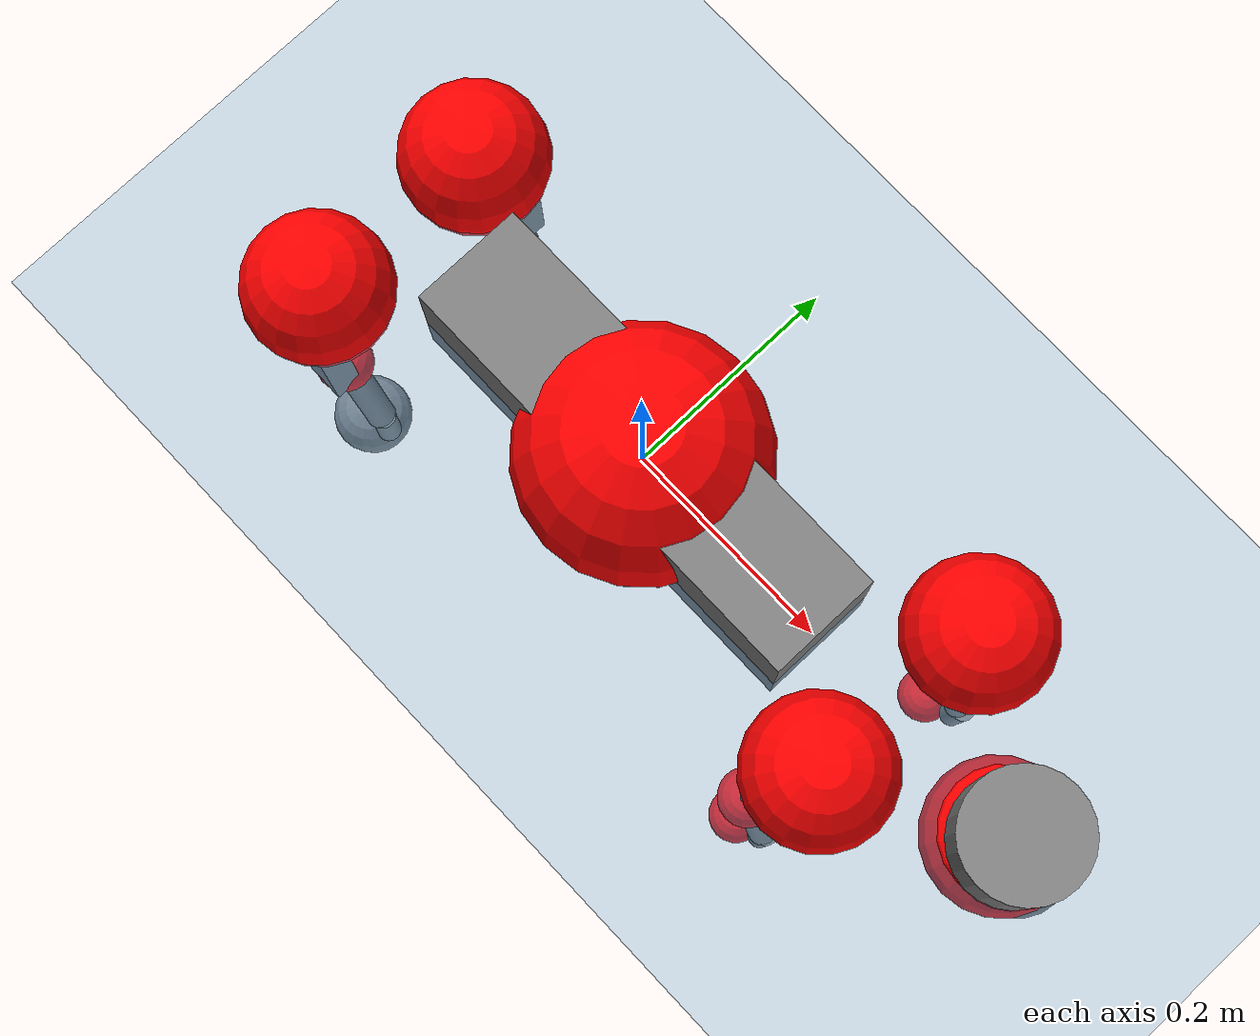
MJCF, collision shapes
<mujoco model="go2">
  <compiler angle="radian" assetdir="assets" balanceinertia="true" inertiafromgeom="false"/>

  <option timestep="0.005" density="1.2" viscosity="2e-05"/>

  <size nkey="1"/>

  <visual>
    <quality shadowsize="8192"/>
    <map shadowclip="0.5"/>
  </visual>

  <default>
    <default class="/">
      <geom contype="0" conaffinity="0" group="1" solref="-1000 -80"/>
      <site size="0.01 0.005 0.005" group="5"/>
      <general forcelimited="true" biastype="affine" gainprm="20" biasprm="0 -20 -0.5"/>
      <default class="go2">
        <joint armature="0.01" damping="0.01" frictionloss="0.2"/>
        <geom condim="1" margin="0.001"/>
        <default class="visual">
          <geom type="mesh" group="2"/>
        </default>
        <default class="collision">
          <geom group="3"/>
          <default class="foot">
            <geom size="0.022 0 0" condim="6" priority="1" friction="0.8 0.02 0.01" solimp="0.015 1 0.022"/>
          </default>
        </default>
        <default class="reward_collision_sphere">
          <geom group="5" rgba="1 0 0 1"/>
        </default>
      </default>
    </default>
  </default>

  <asset>
    <texture type="skybox" colorspace="auto" name="//unnamed_texture_0" builtin="gradient" rgb1="0.95 0.95 0.95" rgb2="0.95 0.95 0.95" width="100" height="600"/>
    <texture type="2d" colorspace="auto" name="texplane" builtin="checker" rgb1="0.345 0.575 0.748" rgb2="0.345 0.575 0.748" markrgb="1 1 1" width="512" height="512"/>
    <material name="MatPlane" class="/" texture="texplane" texuniform="true" texrepeat="2 2" specular="0.9"/>
    <material name="metal" class="/" rgba="0.9 0.95 0.95 1"/>
    <material name="black" class="/" rgba="0 0 0 1"/>
    <material name="white" class="/"/>
    <material name="gray" class="/" rgba="0.671705 0.692426 0.77427 1"/>
    <mesh name="base_0" class="/" file="base_0.obj"/>
    <mesh name="base_1" class="/" file="base_1.obj"/>
    <mesh name="base_2" class="/" file="base_2.obj"/>
    <mesh name="base_3" class="/" file="base_3.obj"/>
    <mesh name="base_4" class="/" file="base_4.obj"/>
    <mesh name="hip_0" class="/" file="hip_0.obj"/>
    <mesh name="hip_1" class="/" file="hip_1.obj"/>
    <mesh name="thigh_0" class="/" file="thigh_0.obj"/>
    <mesh name="thigh_1" class="/" file="thigh_1.obj"/>
    <mesh name="thigh_mirror_0" class="/" file="thigh_mirror_0.obj"/>
    <mesh name="thigh_mirror_1" class="/" file="thigh_mirror_1.obj"/>
    <mesh name="calf_0" class="/" file="calf_0.obj"/>
    <mesh name="calf_1" class="/" file="calf_1.obj"/>
    <mesh name="calf_mirror_0" class="/" file="calf_mirror_0.obj"/>
    <mesh name="calf_mirror_1" class="/" file="calf_mirror_1.obj"/>
    <mesh name="foot" class="/" file="foot.obj"/>
  </asset>

  <worldbody>
    <geom name="floor" class="/" size="100 100 0.125" type="plane" group="0" material="MatPlane"/>
    <light name="toplight_shadow" class="/" pos="0 0 5" dir="0.0990148 0.0990148 -0.990148" type="directional" ambient="0.04 0.04 0.04" diffuse="0.55 0.55 0.55" specular="0.12 0.12 0.12"/>
    <light name="toplight_fill" class="/" pos="0 0 5" dir="0.0990148 0.0990148 -0.990148" type="directional" castshadow="false" ambient="0.04 0.04 0.04" diffuse="0.3 0.3 0.3" specular="0.08 0.08 0.08"/>
    <body name="trunk" childclass="go2" pos="-0.000245169 0.000598042 0.0119663" quat="0.999999 -0.000873963 5.41397e-05 -0.000509005">
      <inertial pos="0.0290062 -0.0158159 -0.0187967" quat="-0.00289381 0.712228 -0.00336294 0.701934" mass="9.89186" diaginertia="0.773245 0.0229936 0.042299"/>
      <joint name="//unnamed_joint_0" type="free" armature="0" damping="0" frictionloss="0"/>
      <geom name="//unnamed_geom_1" class="visual" material="black" mesh="base_0"/>
      <geom name="//unnamed_geom_2" class="visual" material="black" mesh="base_1"/>
      <geom name="//unnamed_geom_3" class="visual" material="black" mesh="base_2"/>
      <geom name="//unnamed_geom_4" class="visual" material="white" mesh="base_3"/>
      <geom name="//unnamed_geom_5" class="visual" material="gray" mesh="base_4"/>
      <geom name="trunk_1" class="collision" size="0.209204 0.0519952 0.0633952" type="box"/>
      <geom name="trunk_2" class="collision" size="0.0556098 0.0500488" pos="0.431024 0 0.0108599" type="cylinder"/>
      <geom name="trunk_3" class="collision" size="0.0522732" pos="0.443123 0 -0.0651591"/>
      <geom name="//unnamed_geom_9" class="reward_collision_sphere" size="0.11122"/>
      <geom name="//unnamed_geom_10" class="reward_collision_sphere" size="0.0667318" pos="0.423462 0 -0.0488694"/>
      <site name="imu" pos="-0.0756337 0.0496942 0.00711835" size="0.011122"/>
      <camera name="track" pos="0 -1.47648 0" quat="0.707107 0.707107 0 0" mode="trackcom"/>
      <camera name="ego_camera" pos="0.471858 0 0.0488694" quat="-0.5 -0.5 0.5 0.5"/>
      <body name="FL_hip" pos="0.294842 0.0451964 -0.00324253" quat="0.999995 0.00185113 0.00231093 0.00092205">
        <inertial pos="0.00601921 0.00354347 0.00952609" quat="0.4914 0.504261 0.519894 0.483691" mass="1.08882" diaginertia="0.0076403 0.000158743 0.000685122"/>
        <joint name="FL_hip_joint" pos="0 0 0" axis="0.999967 -0.00817291 -0.000339548" range="-0.876688 1.04337" armature="0.00469387" damping="0" frictionloss="0.37467"/>
        <geom name="//unnamed_geom_11" class="visual" material="metal" mesh="hip_0"/>
        <geom name="//unnamed_geom_12" class="visual" material="gray" mesh="hip_1"/>
        <geom name="//unnamed_geom_13" class="collision" size="0.051161 0.0222439" pos="0 0.0590592 0" quat="0.707107 0.707107 0 0" type="cylinder"/>
        <geom name="//unnamed_geom_14" class="reward_collision_sphere" size="0.0667318" pos="0 0.0516768 0"/>
        <body name="FL_thigh" pos="0.000143971 0.0744905 -0.00854988" quat="1 -2.01831e-05 -3.15106e-05 7.37546e-06">
          <inertial pos="-0.0034183 -0.0155553 -0.0257099" quat="0.829697 0.0929798 -0.0280194 0.549702" mass="1.73298" diaginertia="0.0448796 0.00126986 0.001894"/>
          <joint name="FL_thigh_joint" pos="0 0 0" axis="0.0246643 0.999033 -0.0363953" stiffness="0.0326979" range="-1.34707 3.32083" armature="0.00713196" damping="0.00712562" frictionloss="0.183362"/>
          <geom name="//unnamed_geom_15" class="visual" material="metal" mesh="thigh_0"/>
          <geom name="//unnamed_geom_16" class="visual" material="gray" mesh="thigh_1"/>
          <geom name="//unnamed_geom_17" class="collision" size="0.118449 0.0136244 0.0189073" pos="0 0 -0.115657" quat="0.707107 0 0.707107 0" type="box"/>
          <body name="FL_calf" pos="0.00855305 -0.0117816 -0.24399" quat="0.999971 0.0012988 -0.000866854 0.00747381">
            <inertial pos="0.0124585 -0.000499464 -0.15326" quat="0.710605 0.00191177 -0.00330555 0.703581" mass="0.420192" diaginertia="0.0114589 0.000329217 8.93311e-05"/>
            <joint name="FL_calf_joint" pos="0 0 0" axis="-0.009099 0.999524 0.0294716" range="-2.80301 -0.739729" armature="0.0163433" damping="0" frictionloss="0.355863"/>
            <geom name="//unnamed_geom_18" class="visual" material="gray" mesh="calf_0"/>
            <geom name="//unnamed_geom_19" class="visual" material="black" mesh="calf_1"/>
            <geom name="FL_calf0" class="collision" size="0.0133464 0.0667318" pos="0.0120989 0 -0.0651591" quat="0.994493 0 -0.104807 0" type="cylinder"/>
            <geom name="//unnamed_geom_21" class="collision" size="0.0122342 0.0361464" pos="0.0302473 0 -0.160726" quat="0.999688 0 0.0249974 0" type="cylinder"/>
            <geom name="//unnamed_geom_22" class="visual" pos="0 0 -0.231315" quat="1 0 0 0" material="black" mesh="foot"/>
            <geom name="FL_foot" class="foot" size="0.0122685" pos="-0.00302473 0 -0.231315"/>
            <geom name="//unnamed_geom_24" class="reward_collision_sphere" size="0.0278049"/>
            <geom name="//unnamed_geom_25" class="reward_collision_sphere" size="0.0278049" pos="-0.00302473 0 -0.231315"/>
            <site name="FL_foot" class="foot" pos="-0.00302473 0 -0.231315" size="0.011122"/>
          </body>
        </body>
      </body>
      <body name="FR_hip" pos="0.285272 -0.0239322 0.000975068" quat="0.999977 -0.005348 -0.00273553 0.00300667">
        <inertial pos="-0.00730172 -0.00577945 0.00460014" quat="0.495794 0.507918 0.500546 0.495642" mass="1.01044" diaginertia="0.00858766 0.00017272 0.000699069"/>
        <joint name="FR_hip_joint" pos="0 0 0" axis="0.999979 -0.00612396 0.00192504" range="-1.30446 1.35057" armature="0.0121018" damping="0" frictionloss="0.345147"/>
        <geom name="//unnamed_geom_26" class="visual" pos="0 -3.02941e-09 -1.29938e-07" quat="4.63268e-05 1 0 0" material="metal" mesh="hip_0"/>
        <geom name="//unnamed_geom_27" class="visual" pos="0 -4.91104e-09 3.21386e-07" quat="4.63268e-05 1 0 0" material="gray" mesh="hip_1"/>
        <geom name="//unnamed_geom_28" class="collision" size="0.051161 0.0222439" pos="0 -0.0590592 0" quat="0.707107 0.707107 0 0" type="cylinder"/>
        <geom name="//unnamed_geom_29" class="reward_collision_sphere" size="0.0667318" pos="0 -0.0516768 0"/>
        <body name="FR_thigh" pos="-0.0166009 -0.0805936 0.00103351" quat="0.999995 0.000324048 -0.000597222 0.00324062">
          <inertial pos="-0.00739088 0.0206507 -0.0347633" quat="0.554155 -0.0209963 0.0848591 0.82781" mass="1.39466" diaginertia="0.0441811 0.00111717 0.00097876"/>
          <joint name="FR_thigh_joint" pos="0 0 0" axis="0.0165736 -0.996985 0.0758017" stiffness="0.00296725" range="-3.83323 1.87511" armature="0.0101905" damping="0.0669968" frictionloss="0.286397"/>
          <geom name="//unnamed_geom_30" class="visual" material="metal" mesh="thigh_mirror_0"/>
          <geom name="//unnamed_geom_31" class="visual" material="gray" mesh="thigh_mirror_1"/>
          <geom name="//unnamed_geom_32" class="collision" size="0.118449 0.0136244 0.0189073" pos="0 0 -0.115657" quat="0.707107 0 0.707107 0" type="box"/>
          <body name="FR_calf" pos="-0.0155688 -0.00535835 -0.240856" quat="0.999997 0.000646518 -0.00212116 -0.0012377">
            <inertial pos="0.0174634 0.00618657 -0.170001" quat="0.719855 -0.0138257 0.0227865 0.693613" mass="0.401932" diaginertia="0.0101817 0.000326104 8.15136e-05"/>
            <joint name="FR_calf_joint" pos="0 0 0" axis="-0.0772831 -0.996273 -0.0383053" stiffness="0.0373892" range="0.708575 2.99579" armature="0.0116722" damping="0" frictionloss="0.413218"/>
            <geom name="//unnamed_geom_33" class="visual" material="gray" mesh="calf_mirror_0"/>
            <geom name="//unnamed_geom_34" class="visual" material="black" mesh="calf_mirror_1"/>
            <geom name="FR_calf0" class="collision" size="0.0144586 0.0667318" pos="0.0151236 0 -0.0651591" quat="0.995004 0 -0.0998334 0" type="cylinder"/>
            <geom name="//unnamed_geom_36" class="collision" size="0.0122342 0.0361464" pos="0.0302473 0 -0.160726" quat="0.999688 0 0.0249974 0" type="cylinder"/>
            <geom name="//unnamed_geom_37" class="visual" pos="0 0 -0.231315" quat="1 0 0 0" material="black" mesh="foot"/>
            <geom name="FR_foot" class="foot" size="0.0194419" pos="-0.00302473 0 -0.231315"/>
            <geom name="//unnamed_geom_39" class="reward_collision_sphere" size="0.0278049"/>
            <geom name="//unnamed_geom_40" class="reward_collision_sphere" size="0.0278049" pos="-0.00302473 0 -0.231315"/>
            <site name="FR_foot" class="foot" pos="-0.00302473 0 -0.231315" size="0.011122"/>
          </body>
        </body>
      </body>
      <body name="RL_hip" pos="-0.286907 0.0221281 -0.00343609" quat="0.999998 0.000425676 -0.00081932 0.00167052">
        <inertial pos="0.0174562 0.0153018 -0.00488272" quat="0.458467 0.534688 0.545381 0.454395" mass="1.1438" diaginertia="0.00639787 0.000113095 0.000808833"/>
        <joint name="RL_hip_joint" pos="0 0 0" axis="-0.998186 0.0513128 -0.0314962" stiffness="0.0627374" range="-1.16191 1.2323" armature="0.0111068" damping="0.0659273" frictionloss="0.116374"/>
        <geom name="//unnamed_geom_41" class="visual" pos="-3.71443e-09 0 -7.28114e-07" quat="4.63268e-05 0 1 0" material="metal" mesh="hip_0"/>
        <geom name="//unnamed_geom_42" class="visual" pos="-6.02154e-09 0 -6.45734e-07" quat="4.63268e-05 0 1 0" material="gray" mesh="hip_1"/>
        <geom name="//unnamed_geom_43" class="collision" size="0.051161 0.0222439" pos="0 0.0590592 0" quat="0.707107 0.707107 0 0" type="cylinder"/>
        <geom name="//unnamed_geom_44" class="reward_collision_sphere" size="0.0667318" pos="0 0.0516768 0"/>
        <body name="RL_thigh" pos="-6.57645e-05 0.0845616 -0.005826" quat="0.999988 0.00318454 -5.82426e-05 0.00366609">
          <inertial pos="0.00166638 -0.00464884 -0.0346032" quat="0.811076 0.0651982 -0.020658 0.580929" mass="1.49292" diaginertia="0.0403496 0.00116386 0.000948401"/>
          <joint name="RL_thigh_joint" pos="0 0 0" axis="0.0163173 0.999818 0.00990363" range="-0.534802 4.5259" armature="0.0118891" damping="0.0427711" frictionloss="0.226225"/>
          <geom name="//unnamed_geom_45" class="visual" material="metal" mesh="thigh_0"/>
          <geom name="//unnamed_geom_46" class="visual" material="gray" mesh="thigh_1"/>
          <geom name="//unnamed_geom_47" class="collision" size="0.118449 0.0136244 0.0189073" pos="0 0 -0.115657" quat="0.707107 0 0.707107 0" type="box"/>
          <body name="RL_calf" pos="-0.0125613 -0.00114784 -0.234664" quat="0.999977 -0.00255966 -0.00621366 0.000755956">
            <inertial pos="-0.00331737 0.00680276 -0.142028" quat="0.711151 0.0023241 -0.00320268 0.703028" mass="0.305118" diaginertia="0.00996451 0.000202753 4.8612e-05"/>
            <joint name="RL_calf_joint" pos="0 0 0" axis="-0.0180868 0.998548 0.0507415" range="-2.72885 -0.481561" armature="0.0120032" damping="0" frictionloss="0.120419"/>
            <geom name="//unnamed_geom_48" class="visual" material="gray" mesh="calf_0"/>
            <geom name="//unnamed_geom_49" class="visual" material="black" mesh="calf_1"/>
            <geom name="RL_calf0" class="collision" size="0.0144586 0.0667318" pos="0.0151236 0 -0.0651591" quat="0.995004 0 -0.0998334 0" type="cylinder"/>
            <geom name="//unnamed_geom_51" class="collision" size="0.0122342 0.0361464" pos="0.0302473 0 -0.160726" quat="0.999688 0 0.0249974 0" type="cylinder"/>
            <geom name="//unnamed_geom_52" class="visual" pos="0 0 -0.231315" quat="1 0 0 0" material="black" mesh="foot"/>
            <geom name="RL_foot" class="foot" size="0.0388666" pos="-0.00302473 0 -0.231315"/>
            <geom name="//unnamed_geom_54" class="reward_collision_sphere" size="0.0278049"/>
            <geom name="//unnamed_geom_55" class="reward_collision_sphere" size="0.0278049" pos="-0.00302473 0 -0.231315"/>
            <site name="RL_foot" class="foot" pos="-0.00302473 0 -0.231315" size="0.011122"/>
          </body>
        </body>
      </body>
      <body name="RR_hip" pos="-0.29172 -0.047327 -0.00505876" quat="0.999975 0.00354771 0.00263362 -0.00558684">
        <inertial pos="0.00262171 -0.0106926 0.00855554" quat="0.456563 0.498615 0.564781 0.473239" mass="1.14789" diaginertia="0.00689669 0.000166327 0.000823779"/>
        <joint name="RR_hip_joint" pos="0 0 0" axis="-0.999328 0.016737 -0.0326171" stiffness="0.0328204" range="-0.76719 0.929957" armature="0.0198064" damping="0.0129069" frictionloss="0.101597"/>
        <geom name="//unnamed_geom_56" class="visual" pos="3.68763e-09 -3.02941e-09 -5.98176e-07" quat="2.14617e-09 4.63268e-05 4.63268e-05 -1" material="metal" mesh="hip_0"/>
        <geom name="//unnamed_geom_57" class="visual" pos="6.08783e-09 -4.91104e-09 -9.67119e-07" quat="2.14617e-09 4.63268e-05 4.63268e-05 -1" material="gray" mesh="hip_1"/>
        <geom name="//unnamed_geom_58" class="collision" size="0.051161 0.0222439" pos="0 -0.0590592 0" quat="0.707107 0.707107 0 0" type="cylinder"/>
        <geom name="//unnamed_geom_59" class="reward_collision_sphere" size="0.0667318" pos="0 -0.0516768 0"/>
        <body name="RR_thigh" pos="0.00418211 -0.0755221 0.0158522" quat="0.999998 0.00187563 -0.000419467 -5.93949e-05">
          <inertial pos="-0.00622801 -0.000938325 -0.0456896" quat="0.594098 -0.0514751 0.0605539 0.800457" mass="1.93397" diaginertia="0.0591931 0.00159195 0.00168458"/>
          <joint name="RR_thigh_joint" pos="0 0 0" axis="0.0194228 -0.998464 -0.0518872" range="-4.70452 0.830618" armature="0.000728833" damping="0" frictionloss="0.145368"/>
          <geom name="//unnamed_geom_60" class="visual" material="metal" mesh="thigh_mirror_0"/>
          <geom name="//unnamed_geom_61" class="visual" material="gray" mesh="thigh_mirror_1"/>
          <geom name="//unnamed_geom_62" class="collision" size="0.118449 0.0136244 0.0189073" pos="0 0 -0.115657" quat="0.707107 0 0.707107 0" type="box"/>
          <body name="RR_calf" pos="-0.0034516 0.012921 -0.235995" quat="0.999981 0.00239787 0.00318435 -0.00466795">
            <inertial pos="0.000211398 0.00173904 -0.153192" quat="0.674779 -0.0555655 -0.0483726 0.734334" mass="0.440256" diaginertia="0.0123348 0.000389191 7.01629e-05"/>
            <joint name="RR_calf_joint" pos="0 0 0" axis="0.0192704 -0.997199 0.0722687" range="0.575281 2.43052" armature="0.0123648" damping="0" frictionloss="0.173149"/>
            <geom name="//unnamed_geom_63" class="visual" material="gray" mesh="calf_mirror_0"/>
            <geom name="//unnamed_geom_64" class="visual" material="black" mesh="calf_mirror_1"/>
            <geom name="RR_calf0" class="collision" size="0.0144586 0.0667318" pos="0.0151236 0 -0.0651591" quat="0.995004 0 -0.0998334 0" type="cylinder"/>
            <geom name="//unnamed_geom_66" class="collision" size="0.0122342 0.0361464" pos="0.0302473 0 -0.160726" quat="0.999688 0 0.0249974 0" type="cylinder"/>
            <geom name="//unnamed_geom_67" class="visual" pos="0 0 -0.231315" quat="1 0 0 0" material="black" mesh="foot"/>
            <geom name="RR_foot" class="foot" size="0.0402179" pos="-0.00302473 0 -0.231315"/>
            <geom name="//unnamed_geom_69" class="reward_collision_sphere" size="0.0278049"/>
            <geom name="//unnamed_geom_70" class="reward_collision_sphere" size="0.0278049" pos="-0.00302473 0 -0.231315"/>
            <site name="RR_foot" class="foot" pos="-0.00302473 0 -0.231315" size="0.011122"/>
          </body>
        </body>
      </body>
    </body>
  </worldbody>

  <contact>
    <pair class="/" geom1="floor" geom2="FL_foot" name="//unnamed_contact_0"/>
    <pair class="/" geom1="floor" geom2="FR_foot" name="//unnamed_contact_1"/>
    <pair class="/" geom1="floor" geom2="RL_foot" name="//unnamed_contact_2"/>
    <pair class="/" geom1="floor" geom2="RR_foot" name="//unnamed_contact_3"/>
  </contact>

  <actuator>
    <general name="FL_hip" class="/" joint="FL_hip_joint" forcerange="-36.3167 36.3167" gainprm="13.6292" biasprm="0 -13.6292 -0.438624"/>
    <general name="FL_thigh" class="/" joint="FL_thigh_joint" forcerange="-43.2038 43.2038" gainprm="13.6292" biasprm="0 -13.6292 -0.438624"/>
    <general name="FL_calf" class="/" joint="FL_calf_joint" forcerange="-38.9468 38.9468" gainprm="13.6292" biasprm="0 -13.6292 -0.438624"/>
    <general name="FR_hip" class="/" joint="FR_hip_joint" forcerange="-33.0684 33.0684" gainprm="13.6292" biasprm="0 -13.6292 -0.438624"/>
    <general name="FR_thigh" class="/" joint="FR_thigh_joint" forcerange="-18.9762 18.9762" gainprm="13.6292" biasprm="0 -13.6292 -0.438624"/>
    <general name="FR_calf" class="/" joint="FR_calf_joint" forcerange="-67.3823 67.3823" gainprm="13.6292" biasprm="0 -13.6292 -0.438624"/>
    <general name="RL_hip" class="/" joint="RL_hip_joint" forcerange="-15.1928 15.1928" gainprm="13.6292" biasprm="0 -13.6292 -0.438624"/>
    <general name="RL_thigh" class="/" joint="RL_thigh_joint" forcerange="-26.2443 26.2443" gainprm="13.6292" biasprm="0 -13.6292 -0.438624"/>
    <general name="RL_calf" class="/" joint="RL_calf_joint" forcerange="-68.8381 68.8381" gainprm="13.6292" biasprm="0 -13.6292 -0.438624"/>
    <general name="RR_hip" class="/" joint="RR_hip_joint" forcerange="-42.9551 42.9551" gainprm="13.6292" biasprm="0 -13.6292 -0.438624"/>
    <general name="RR_thigh" class="/" joint="RR_thigh_joint" forcerange="-31.2576 31.2576" gainprm="13.6292" biasprm="0 -13.6292 -0.438624"/>
    <general name="RR_calf" class="/" joint="RR_calf_joint" forcerange="-61.0146 61.0146" gainprm="13.6292" biasprm="0 -13.6292 -0.438624"/>
  </actuator>

  <sensor>
    <gyro site="imu" name="imu_angular_velocity"/>
    <velocimeter site="imu" name="imu_linear_velocity"/>
    <framelinvel objtype="site" objname="FL_foot" name="FL_foot_global_linear_velocity"/>
    <framelinvel objtype="site" objname="FR_foot" name="FR_foot_global_linear_velocity"/>
    <framelinvel objtype="site" objname="RL_foot" name="RL_foot_global_linear_velocity"/>
    <framelinvel objtype="site" objname="RR_foot" name="RR_foot_global_linear_velocity"/>
  </sensor>

  <keyframe>
    <key name="home" qpos="0 0 0.325 1 0 0 0 0.1 0.8 -1.5 -0.1 -0.8 1.5 -0.1 0.8 -1.5 0.1 -0.8 1.5"/>
  </keyframe>
</mujoco>
